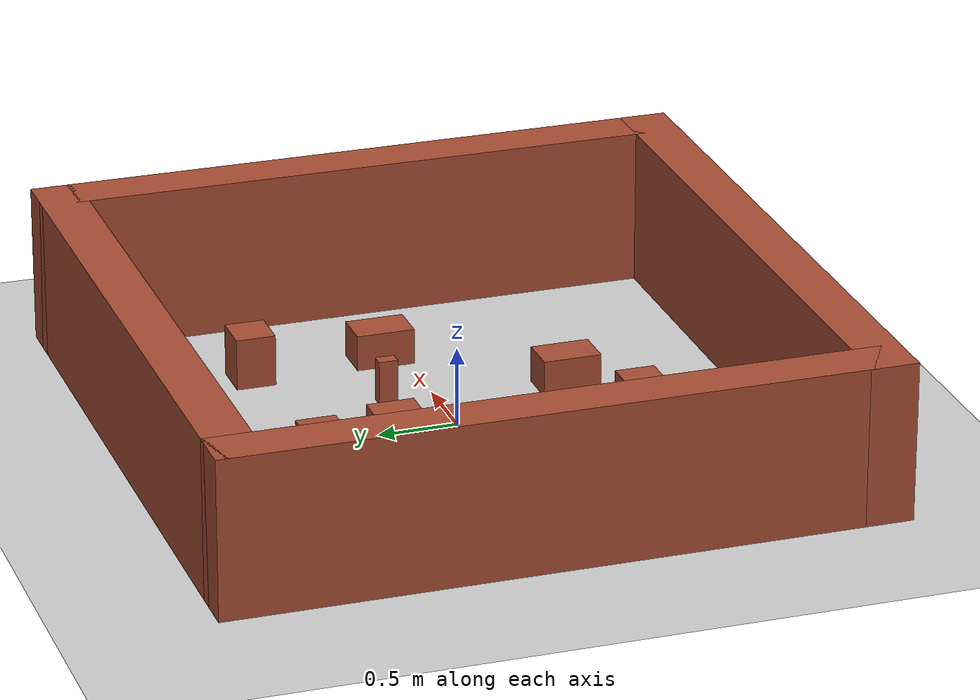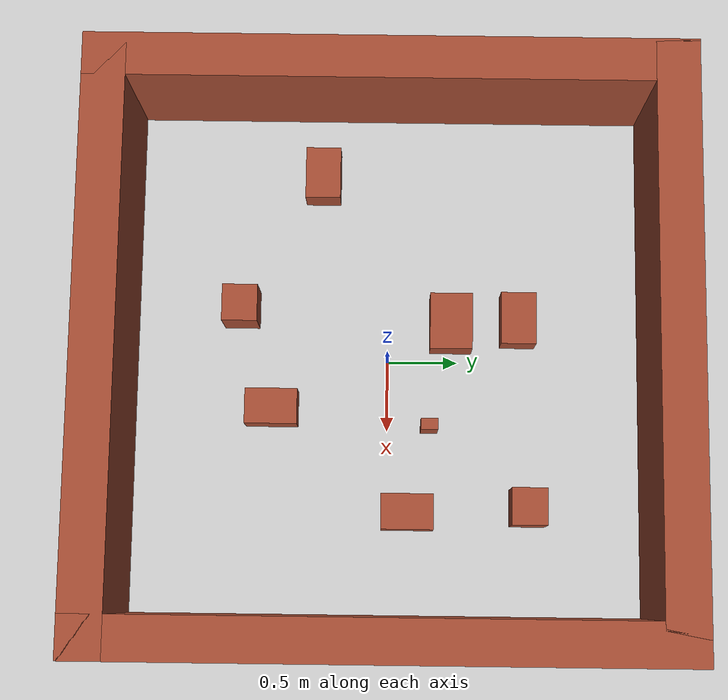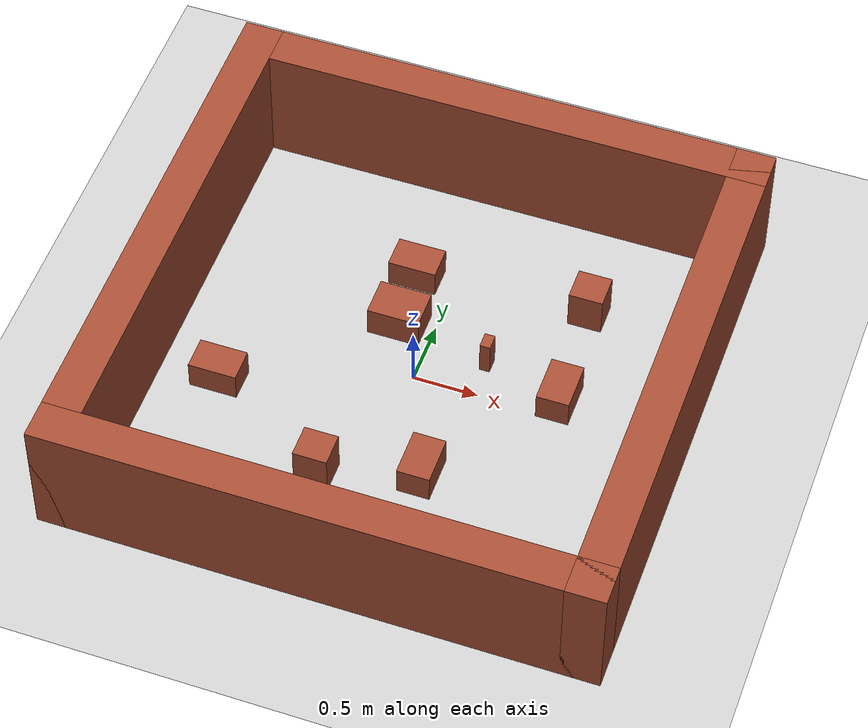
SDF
<sdf version="1.6">
 <world name="default">
  <light name="sun" type="directional">
   <pose>0 0 10 0 -0 0</pose>
   <diffuse>0.8 0.8 0.8 1</diffuse>
   <specular>0.1 0.1 0.1 1</specular>
   <attenuation>
    <range>1000</range>
    <constant>0.9</constant>
    <linear>0.01</linear>
    <quadratic>0.001</quadratic>
   </attenuation>
   <direction>-0.5 0.5 -1</direction>
  </light>
  <model name="ground_plane">
   <static>1</static>
   <link name="link">
    <collision name="collision">
     <geometry><plane><normal>0 0 1</normal><size>100 100</size></plane></geometry>
     <surface><friction><ode><mu>100</mu><mu2>50</mu2></ode></friction></surface>
    </collision>
    <visual name="visual">
     <cast_shadows>0</cast_shadows>
     <geometry><plane><normal>0 0 1</normal><size>100 100</size></plane></geometry>
     <material>
      <script><uri>file://media/materials/scripts/gazebo.material</uri><name>Gazebo/Grey</name></script>
     </material>
    </visual>
   </link>
  </model>
  <physics name="default_physics" default="0" type="ode">
   <real_time_update_rate>1000</real_time_update_rate>
   <max_step_size>0.001</max_step_size>
   <real_time_factor>1</real_time_factor>
   <ode>
    <solver>
     <type>quick</type>
     <iters>150</iters>
     <precon_iters>0</precon_iters>
     <sor>1.4</sor>
     <use_dynamic_moi_rescaling>1</use_dynamic_moi_rescaling>
    </solver>
    <constraints>
     <cfm>1e-05</cfm>
     <erp>0.2</erp>
     <contact_max_correcting_vel>2000</contact_max_correcting_vel>
     <contact_surface_layer>0.01</contact_surface_layer>
    </constraints>
   </ode>
  </physics>
  <gravity>0 0 -9.8</gravity>
  <magnetic_field>6e-06 2.3e-05 -4.2e-05</magnetic_field>
  <atmosphere type="adiabatic"/>
  <scene><ambient>0.4 0.4 0.4 1</ambient><background>0.7 0.7 0.7 1</background><shadows>1</shadows></scene>
  <spherical_coordinates>
   <surface_model>EARTH_WGS84</surface_model>
   <latitude_deg>0</latitude_deg>
   <longitude_deg>0</longitude_deg>
   <elevation>0</elevation>
   <heading_deg>0</heading_deg>
  </spherical_coordinates>
  <model name="wall_brick">
   <link name="Wall_0">
    <collision name="Wall_0_Collision">
     <geometry><box><size>4.2 0.3 1</size></box></geometry>
     <pose>0 0 0.5 0 -0 0</pose>
    </collision>
    <visual name="Wall_0_Visual">
     <pose>0 0 0.5 0 -0 0</pose>
     <geometry><box><size>4.2 0.3 1</size></box></geometry>
     <material>
      <script><uri>file://media/materials/scripts/gazebo.material</uri><name>Gazebo/Bricks</name></script>
      <ambient>1 1 1 1</ambient>
     </material>
    </visual>
    <pose>0 -1.95 0 0 -0 0</pose>
   </link>
   <link name="Wall_3">
    <collision name="Wall_3_Collision">
     <geometry><box><size>4.2 0.3 1</size></box></geometry>
     <pose>0 0 0.5 0 -0 0</pose>
    </collision>
    <visual name="Wall_3_Visual">
     <pose>0 0 0.5 0 -0 0</pose>
     <geometry><box><size>4.2 0.3 1</size></box></geometry>
     <material>
      <script><uri>file://media/materials/scripts/gazebo.material</uri><name>Gazebo/Bricks</name></script>
      <ambient>1 1 1 1</ambient>
     </material>
    </visual>
    <pose>0 1.95 0 0 -0 0</pose>
   </link>
   <link name="Wall_5">
    <collision name="Wall_5_Collision">
     <geometry><box><size>4.2 0.3 1</size></box></geometry>
     <pose>0 0 0.5 0 -0 0</pose>
    </collision>
    <visual name="Wall_5_Visual">
     <pose>0 0 0.5 0 -0 0</pose>
     <geometry><box><size>4.2 0.3 1</size></box></geometry>
     <material>
      <script><uri>file://media/materials/scripts/gazebo.material</uri><name>Gazebo/Bricks</name></script>
      <ambient>1 1 1 1</ambient>
     </material>
    </visual>
    <pose>-1.95 0 0 0 -0 1.5708</pose>
   </link>
   <link name="Wall_7">
    <collision name="Wall_7_Collision">
     <geometry><box><size>4.2 0.3 1</size></box></geometry>
     <pose>0 0 0.5 0 -0 0</pose>
    </collision>
    <visual name="Wall_7_Visual">
     <pose>0 0 0.5 0 -0 0</pose>
     <geometry><box><size>4.2 0.3 1</size></box></geometry>
     <material>
      <script><uri>file://media/materials/scripts/gazebo.material</uri><name>Gazebo/Bricks</name></script>
      <ambient>1 1 1 1</ambient>
     </material>
    </visual>
    <pose>1.95 0 0 0 0 -1.5708</pose>
   </link>
   <static>1</static>
  </model>
  <model name="A_3">
   <link name="Wall_0">
    <inertial>
     <mass>1</mass>
     <inertia><ixx>1</ixx><ixy>0</ixy><ixz>0</ixz><iyy>1</iyy><iyz>0</iyz><izz>1</izz></inertia>
    </inertial>
    <visual name="Wall_0_Visual">
     <pose>0 0 0.115 0 -0 0</pose>
     <geometry><box><size>0.37 0.25 0.23</size></box></geometry>
     <material>
      <script><uri>file://media/materials/scripts/gazebo.material</uri><name>Gazebo/Bricks</name></script>
      <ambient>1 1 1 1</ambient>
      <diffuse>1 1 1 1</diffuse>
      <specular>0 0 0 1</specular>
      <emissive>0 0 0 1</emissive>
      <shader type="vertex"><normal_map>__default__</normal_map></shader>
     </material>
    </visual>
    <collision name="Wall_0_Collision">
     <pose>0 0 0.115 0 -0 0</pose>
     <geometry><box><size>0.37 0.25 0.23</size></box></geometry>
     <surface>
      <friction>
       <ode><mu>1</mu><mu2>1</mu2><fdir1>0 0 0</fdir1><slip1>0</slip1><slip2>0</slip2></ode>
       <torsional>
        <coefficient>1</coefficient>
        <patch_radius>0</patch_radius>
        <surface_radius>0</surface_radius>
        <use_patch_radius>1</use_patch_radius>
        <ode><slip>0</slip></ode>
       </torsional>
      </friction>
      <bounce><restitution_coefficient>0</restitution_coefficient><threshold>1e+06</threshold></bounce>
      <contact>
       <collide_without_contact>0</collide_without_contact>
       <collide_without_contact_bitmask>1</collide_without_contact_bitmask>
       <collide_bitmask>1</collide_bitmask>
       <ode>
        <soft_cfm>0</soft_cfm>
        <soft_erp>0.2</soft_erp>
        <kp>1e+13</kp>
        <kd>1</kd>
        <max_vel>0.01</max_vel>
        <min_depth>0</min_depth>
       </ode>
       <bullet>
        <split_impulse>1</split_impulse>
        <split_impulse_penetration_threshold>-0.01</split_impulse_penetration_threshold>
        <soft_cfm>0</soft_cfm>
        <soft_erp>0.2</soft_erp>
        <kp>1e+13</kp>
        <kd>1</kd>
       </bullet>
      </contact>
     </surface>
    </collision>
   </link>
   <static>1</static>
   <pose>-1.35 -0.48 0 0 -0 0</pose>
  </model>
  <model name="B_1">
   <link name="Wall_4">
    <inertial>
     <mass>1</mass>
     <inertia><ixx>1</ixx><ixy>0</ixy><ixz>0</ixz><iyy>1</iyy><iyz>0</iyz><izz>1</izz></inertia>
    </inertial>
    <visual name="Wall_4_Visual">
     <pose>0 0 0.165 0 -0 0</pose>
     <geometry><box><size>0.26 0.25 0.33</size></box></geometry>
     <material>
      <script><uri>file://media/materials/scripts/gazebo.material</uri><name>Gazebo/Bricks</name></script>
      <ambient>1 1 1 1</ambient>
      <diffuse>1 1 1 1</diffuse>
      <specular>0 0 0 1</specular>
      <emissive>0 0 0 1</emissive>
      <shader type="vertex"><normal_map>__default__</normal_map></shader>
     </material>
    </visual>
    <collision name="Wall_4_Collision">
     <pose>0 0 0.165 0 -0 0</pose>
     <geometry><box><size>0.26 0.25 0.33</size></box></geometry>
     <surface>
      <friction>
       <ode><mu>1</mu><mu2>1</mu2><fdir1>0 0 0</fdir1><slip1>0</slip1><slip2>0</slip2></ode>
       <torsional>
        <coefficient>1</coefficient>
        <patch_radius>0</patch_radius>
        <surface_radius>0</surface_radius>
        <use_patch_radius>1</use_patch_radius>
        <ode><slip>0</slip></ode>
       </torsional>
      </friction>
      <bounce><restitution_coefficient>0</restitution_coefficient><threshold>1e+06</threshold></bounce>
      <contact>
       <collide_without_contact>0</collide_without_contact>
       <collide_without_contact_bitmask>1</collide_without_contact_bitmask>
       <collide_bitmask>1</collide_bitmask>
       <ode>
        <soft_cfm>0</soft_cfm>
        <soft_erp>0.2</soft_erp>
        <kp>1e+13</kp>
        <kd>1</kd>
        <max_vel>0.01</max_vel>
        <min_depth>0</min_depth>
       </ode>
       <bullet>
        <split_impulse>1</split_impulse>
        <split_impulse_penetration_threshold>-0.01</split_impulse_penetration_threshold>
        <soft_cfm>0</soft_cfm>
        <soft_erp>0.2</soft_erp>
        <kp>1e+13</kp>
        <kd>1</kd>
       </bullet>
      </contact>
     </surface>
    </collision>
   </link>
   <static>1</static>
   <pose>-0.37 -1.05 0 0 -0 0</pose>
  </model>
  <model name="A_1_0">
   <link name="Wall_0">
    <inertial>
     <mass>1</mass>
     <inertia><ixx>1</ixx><ixy>0</ixy><ixz>0</ixz><iyy>1</iyy><iyz>0</iyz><izz>1</izz></inertia>
    </inertial>
    <visual name="Wall_0_Visual">
     <pose>0 0 0.115 0 -0 0</pose>
     <geometry><box><size>0.37 0.25 0.23</size></box></geometry>
     <material>
      <script><uri>file://media/materials/scripts/gazebo.material</uri><name>Gazebo/Bricks</name></script>
      <ambient>1 1 1 1</ambient>
      <diffuse>1 1 1 1</diffuse>
      <specular>0 0 0 1</specular>
      <emissive>0 0 0 1</emissive>
      <shader type="vertex"><normal_map>__default__</normal_map></shader>
     </material>
    </visual>
    <collision name="Wall_0_Collision">
     <pose>0 0 0.115 0 -0 0</pose>
     <geometry><box><size>0.37 0.25 0.23</size></box></geometry>
     <surface>
      <friction>
       <ode><mu>1</mu><mu2>1</mu2><fdir1>0 0 0</fdir1><slip1>0</slip1><slip2>0</slip2></ode>
       <torsional>
        <coefficient>1</coefficient>
        <patch_radius>0</patch_radius>
        <surface_radius>0</surface_radius>
        <use_patch_radius>1</use_patch_radius>
        <ode><slip>0</slip></ode>
       </torsional>
      </friction>
      <bounce><restitution_coefficient>0</restitution_coefficient><threshold>1e+06</threshold></bounce>
      <contact>
       <collide_without_contact>0</collide_without_contact>
       <collide_without_contact_bitmask>1</collide_without_contact_bitmask>
       <collide_bitmask>1</collide_bitmask>
       <ode>
        <soft_cfm>0</soft_cfm>
        <soft_erp>0.2</soft_erp>
        <kp>1e+13</kp>
        <kd>1</kd>
        <max_vel>0.01</max_vel>
        <min_depth>0</min_depth>
       </ode>
       <bullet>
        <split_impulse>1</split_impulse>
        <split_impulse_penetration_threshold>-0.01</split_impulse_penetration_threshold>
        <soft_cfm>0</soft_cfm>
        <soft_erp>0.2</soft_erp>
        <kp>1e+13</kp>
        <kd>1</kd>
       </bullet>
      </contact>
     </surface>
    </collision>
   </link>
   <static>1</static>
   <pose>0.35 -0.82 0 0 -0 1.57</pose>
  </model>
  <model name="E_0">
   <link name="Wall_6">
    <inertial>
     <mass>1</mass>
     <inertia><ixx>1</ixx><ixy>0</ixy><ixz>0</ixz><iyy>1</iyy><iyz>0</iyz><izz>1</izz></inertia>
    </inertial>
    <visual name="Wall_6_Visual">
     <pose>0 0 0.125 0 -0 0</pose>
     <geometry><box><size>0.4 0.3 0.25</size></box></geometry>
     <material>
      <script><uri>file://media/materials/scripts/gazebo.material</uri><name>Gazebo/Bricks</name></script>
      <ambient>1 1 1 1</ambient>
      <diffuse>1 1 1 1</diffuse>
      <specular>0 0 0 1</specular>
      <emissive>0 0 0 1</emissive>
      <shader type="vertex"><normal_map>__default__</normal_map></shader>
     </material>
    </visual>
    <collision name="Wall_6_Collision">
     <pose>0 0 0.125 0 -0 0</pose>
     <geometry><box><size>0.4 0.3 0.25</size></box></geometry>
     <surface>
      <friction>
       <ode><mu>1</mu><mu2>1</mu2><fdir1>0 0 0</fdir1><slip1>0</slip1><slip2>0</slip2></ode>
       <torsional>
        <coefficient>1</coefficient>
        <patch_radius>0</patch_radius>
        <surface_radius>0</surface_radius>
        <use_patch_radius>1</use_patch_radius>
        <ode><slip>0</slip></ode>
       </torsional>
      </friction>
      <bounce><restitution_coefficient>0</restitution_coefficient><threshold>1e+06</threshold></bounce>
      <contact>
       <collide_without_contact>0</collide_without_contact>
       <collide_without_contact_bitmask>1</collide_without_contact_bitmask>
       <collide_bitmask>1</collide_bitmask>
       <ode>
        <soft_cfm>0</soft_cfm>
        <soft_erp>0.2</soft_erp>
        <kp>1e+13</kp>
        <kd>1</kd>
        <max_vel>0.01</max_vel>
        <min_depth>0</min_depth>
       </ode>
       <bullet>
        <split_impulse>1</split_impulse>
        <split_impulse_penetration_threshold>-0.01</split_impulse_penetration_threshold>
        <soft_cfm>0</soft_cfm>
        <soft_erp>0.2</soft_erp>
        <kp>1e+13</kp>
        <kd>1</kd>
       </bullet>
      </contact>
     </surface>
    </collision>
   </link>
   <static>1</static>
   <pose>-0.27 0.45 0 0 -0 0</pose>
  </model>
  <model name="A_0_0">
   <link name="Wall_0">
    <inertial>
     <mass>1</mass>
     <inertia><ixx>1</ixx><ixy>0</ixy><ixz>0</ixz><iyy>1</iyy><iyz>0</iyz><izz>1</izz></inertia>
    </inertial>
    <visual name="Wall_0_Visual">
     <pose>0 0 0.115 0 -0 0</pose>
     <geometry><box><size>0.37 0.25 0.23</size></box></geometry>
     <material>
      <script><uri>file://media/materials/scripts/gazebo.material</uri><name>Gazebo/Bricks</name></script>
      <ambient>1 1 1 1</ambient>
      <diffuse>1 1 1 1</diffuse>
      <specular>0 0 0 1</specular>
      <emissive>0 0 0 1</emissive>
      <shader type="vertex"><normal_map>__default__</normal_map></shader>
     </material>
    </visual>
    <collision name="Wall_0_Collision">
     <pose>0 0 0.115 0 -0 0</pose>
     <geometry><box><size>0.37 0.25 0.23</size></box></geometry>
     <surface>
      <friction>
       <ode><mu>1</mu><mu2>1</mu2><fdir1>0 0 0</fdir1><slip1>0</slip1><slip2>0</slip2></ode>
       <torsional>
        <coefficient>1</coefficient>
        <patch_radius>0</patch_radius>
        <surface_radius>0</surface_radius>
        <use_patch_radius>1</use_patch_radius>
        <ode><slip>0</slip></ode>
       </torsional>
      </friction>
      <bounce><restitution_coefficient>0</restitution_coefficient><threshold>1e+06</threshold></bounce>
      <contact>
       <collide_without_contact>0</collide_without_contact>
       <collide_without_contact_bitmask>1</collide_without_contact_bitmask>
       <collide_bitmask>1</collide_bitmask>
       <ode>
        <soft_cfm>0</soft_cfm>
        <soft_erp>0.2</soft_erp>
        <kp>1e+13</kp>
        <kd>1</kd>
        <max_vel>0.01</max_vel>
        <min_depth>0</min_depth>
       </ode>
       <bullet>
        <split_impulse>1</split_impulse>
        <split_impulse_penetration_threshold>-0.01</split_impulse_penetration_threshold>
        <soft_cfm>0</soft_cfm>
        <soft_erp>0.2</soft_erp>
        <kp>1e+13</kp>
        <kd>1</kd>
       </bullet>
      </contact>
     </surface>
    </collision>
   </link>
   <static>1</static>
   <pose>-0.3 0.93 0 0 -0 0</pose>
  </model>
  <model name="F_0">
   <link name="Wall_10">
    <inertial>
     <mass>1</mass>
     <inertia><ixx>1</ixx><ixy>0</ixy><ixz>0</ixz><iyy>1</iyy><iyz>0</iyz><izz>1</izz></inertia>
    </inertial>
    <visual name="Wall_10_Visual">
     <pose>0 0 0.14 0 -0 0</pose>
     <geometry><box><size>0.12 0.08 0.28</size></box></geometry>
     <material>
      <script><uri>file://media/materials/scripts/gazebo.material</uri><name>Gazebo/Bricks</name></script>
      <ambient>1 1 1 1</ambient>
      <diffuse>1 1 1 1</diffuse>
      <specular>0 0 0 1</specular>
      <emissive>0 0 0 1</emissive>
      <shader type="vertex"><normal_map>__default__</normal_map></shader>
     </material>
    </visual>
    <collision name="Wall_10_Collision">
     <pose>0 0 0.14 0 -0 0</pose>
     <geometry><box><size>0.12 0.08 0.28</size></box></geometry>
     <surface>
      <friction>
       <ode><mu>1</mu><mu2>1</mu2><fdir1>0 0 0</fdir1><slip1>0</slip1><slip2>0</slip2></ode>
       <torsional>
        <coefficient>1</coefficient>
        <patch_radius>0</patch_radius>
        <surface_radius>0</surface_radius>
        <use_patch_radius>1</use_patch_radius>
        <ode><slip>0</slip></ode>
       </torsional>
      </friction>
      <bounce><restitution_coefficient>0</restitution_coefficient><threshold>1e+06</threshold></bounce>
      <contact>
       <collide_without_contact>0</collide_without_contact>
       <collide_without_contact_bitmask>1</collide_without_contact_bitmask>
       <collide_bitmask>1</collide_bitmask>
       <ode>
        <soft_cfm>0</soft_cfm>
        <soft_erp>0.2</soft_erp>
        <kp>1e+13</kp>
        <kd>1</kd>
        <max_vel>0.01</max_vel>
        <min_depth>0</min_depth>
       </ode>
       <bullet>
        <split_impulse>1</split_impulse>
        <split_impulse_penetration_threshold>-0.01</split_impulse_penetration_threshold>
        <soft_cfm>0</soft_cfm>
        <soft_erp>0.2</soft_erp>
        <kp>1e+13</kp>
        <kd>1</kd>
       </bullet>
      </contact>
     </surface>
    </collision>
   </link>
   <static>1</static>
   <pose>0.47 0.3 0 0 -0 1.57</pose>
  </model>
  <model name="A_2_0">
   <link name="Wall_0">
    <inertial>
     <mass>1</mass>
     <inertia><ixx>1</ixx><ixy>0</ixy><ixz>0</ixz><iyy>1</iyy><iyz>0</iyz><izz>1</izz></inertia>
    </inertial>
    <visual name="Wall_0_Visual">
     <pose>0 0 0.115 0 -0 0</pose>
     <geometry><box><size>0.37 0.25 0.23</size></box></geometry>
     <material>
      <script><uri>file://media/materials/scripts/gazebo.material</uri><name>Gazebo/Bricks</name></script>
      <ambient>1 1 1 1</ambient>
      <diffuse>1 1 1 1</diffuse>
      <specular>0 0 0 1</specular>
      <emissive>0 0 0 1</emissive>
      <shader type="vertex"><normal_map>__default__</normal_map></shader>
     </material>
    </visual>
    <collision name="Wall_0_Collision">
     <pose>0 0 0.115 0 -0 0</pose>
     <geometry><box><size>0.37 0.25 0.23</size></box></geometry>
     <surface>
      <friction>
       <ode><mu>1</mu><mu2>1</mu2><fdir1>0 0 0</fdir1><slip1>0</slip1><slip2>0</slip2></ode>
       <torsional>
        <coefficient>1</coefficient>
        <patch_radius>0</patch_radius>
        <surface_radius>0</surface_radius>
        <use_patch_radius>1</use_patch_radius>
        <ode><slip>0</slip></ode>
       </torsional>
      </friction>
      <bounce><restitution_coefficient>0</restitution_coefficient><threshold>1e+06</threshold></bounce>
      <contact>
       <collide_without_contact>0</collide_without_contact>
       <collide_without_contact_bitmask>1</collide_without_contact_bitmask>
       <collide_bitmask>1</collide_bitmask>
       <ode>
        <soft_cfm>0</soft_cfm>
        <soft_erp>0.2</soft_erp>
        <kp>1e+13</kp>
        <kd>1</kd>
        <max_vel>0.01</max_vel>
        <min_depth>0</min_depth>
       </ode>
       <bullet>
        <split_impulse>1</split_impulse>
        <split_impulse_penetration_threshold>-0.01</split_impulse_penetration_threshold>
        <soft_cfm>0</soft_cfm>
        <soft_erp>0.2</soft_erp>
        <kp>1e+13</kp>
        <kd>1</kd>
       </bullet>
      </contact>
     </surface>
    </collision>
   </link>
   <static>1</static>
   <pose>1.08 0.15 0 0 -0 1.57</pose>
  </model>
  <model name="B_0_0">
   <link name="Wall_4">
    <inertial>
     <mass>1</mass>
     <inertia><ixx>1</ixx><ixy>0</ixy><ixz>0</ixz><iyy>1</iyy><iyz>0</iyz><izz>1</izz></inertia>
    </inertial>
    <visual name="Wall_4_Visual">
     <pose>0 0 0.165 0 -0 0</pose>
     <geometry><box><size>0.26 0.25 0.33</size></box></geometry>
     <material>
      <script><uri>file://media/materials/scripts/gazebo.material</uri><name>Gazebo/Bricks</name></script>
      <ambient>1 1 1 1</ambient>
      <diffuse>1 1 1 1</diffuse>
      <specular>0 0 0 1</specular>
      <emissive>0 0 0 1</emissive>
      <shader type="vertex"><normal_map>__default__</normal_map></shader>
     </material>
    </visual>
    <collision name="Wall_4_Collision">
     <pose>0 0 0.165 0 -0 0</pose>
     <geometry><box><size>0.26 0.25 0.33</size></box></geometry>
     <surface>
      <friction>
       <ode><mu>1</mu><mu2>1</mu2><fdir1>0 0 0</fdir1><slip1>0</slip1><slip2>0</slip2></ode>
       <torsional>
        <coefficient>1</coefficient>
        <patch_radius>0</patch_radius>
        <surface_radius>0</surface_radius>
        <use_patch_radius>1</use_patch_radius>
        <ode><slip>0</slip></ode>
       </torsional>
      </friction>
      <bounce><restitution_coefficient>0</restitution_coefficient><threshold>1e+06</threshold></bounce>
      <contact>
       <collide_without_contact>0</collide_without_contact>
       <collide_without_contact_bitmask>1</collide_without_contact_bitmask>
       <collide_bitmask>1</collide_bitmask>
       <ode>
        <soft_cfm>0</soft_cfm>
        <soft_erp>0.2</soft_erp>
        <kp>1e+13</kp>
        <kd>1</kd>
        <max_vel>0.01</max_vel>
        <min_depth>0</min_depth>
       </ode>
       <bullet>
        <split_impulse>1</split_impulse>
        <split_impulse_penetration_threshold>-0.01</split_impulse_penetration_threshold>
        <soft_cfm>0</soft_cfm>
        <soft_erp>0.2</soft_erp>
        <kp>1e+13</kp>
        <kd>1</kd>
       </bullet>
      </contact>
     </surface>
    </collision>
   </link>
   <static>1</static>
   <pose>1.04 1 0 0 -0 0</pose>
  </model>
 </world>
</sdf>
